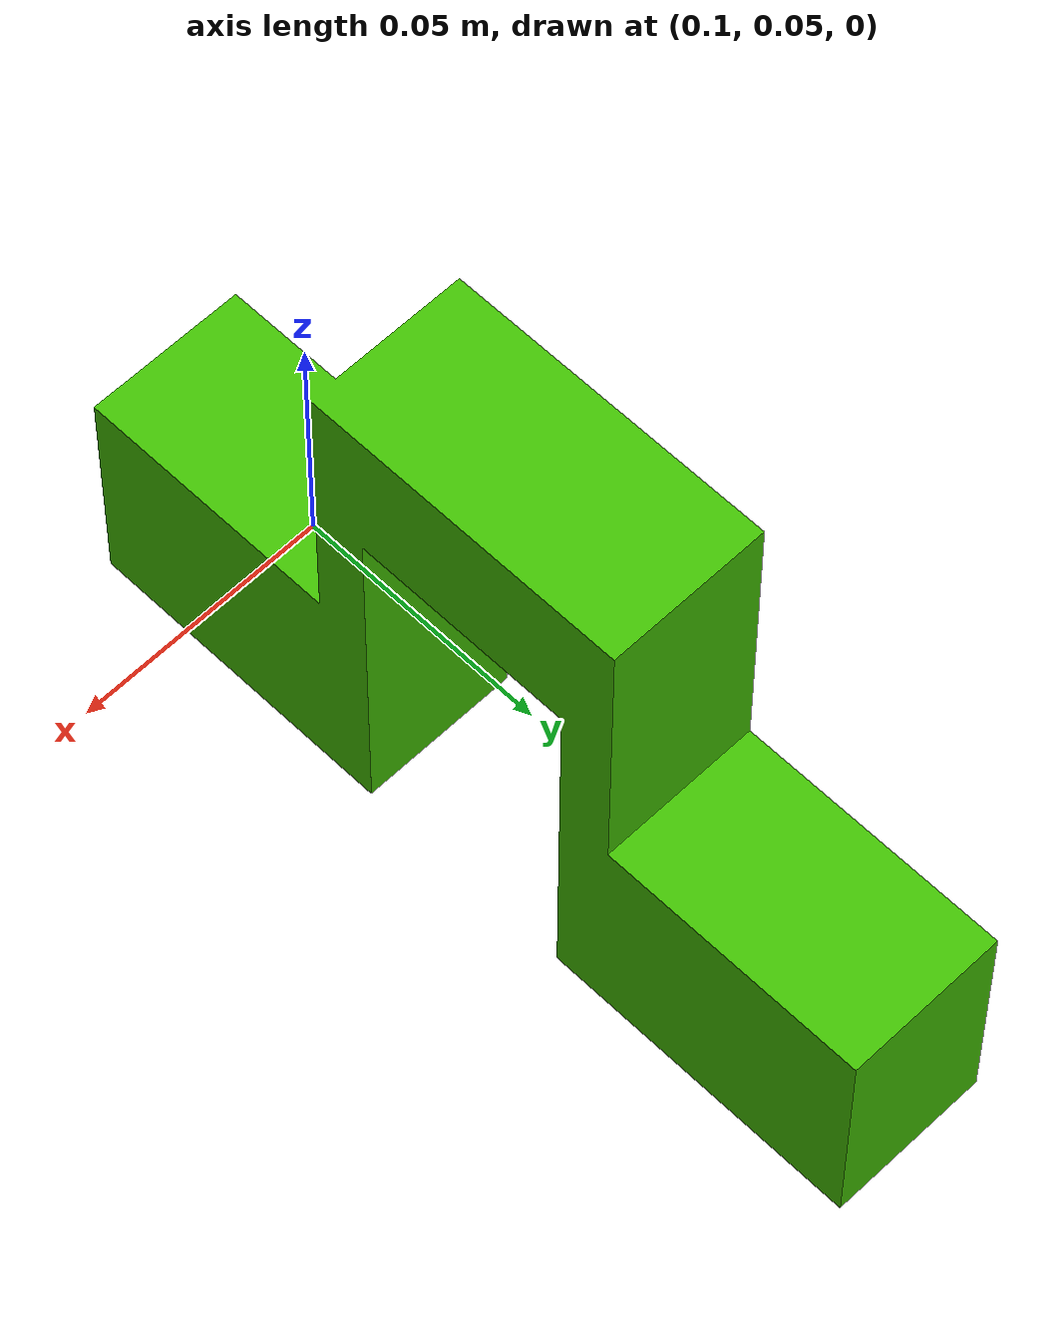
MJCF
<?xml version='1.0' encoding='utf-8'?>
<mujoco model="obj4">
  <asset>
    <mesh name="obj4" file="obj4.obj" scale="0.001 0.001 0.001" />
    <material name="mat4" rgba="0.2549 0.7451 0.00784 1" />
  </asset>
  <worldbody>
    <body>
      <body name="object">
        <geom name="visual" mesh="obj4" type="mesh" group="1" contype="0" conaffinity="0" material="mat4" />
        <geom name="collision" mesh="obj4" type="mesh" group="0" density="50" friction="0.95 0.3 0.1" solimp="0.998 0.998 0.001" solref="0.001 1" condim="4" />
      </body>
      <site name="bottom_site" pos="0 0 -0.025" size="0.005" rgba="0 0 0 0" />
      <site name="top_site" pos="0 0 0.025" size="0.005" rgba="0 0 0 0" />
      <site name="horizontal_radius_site" pos="0.03 0.03 0" size="0.005" rgba="0 0 0 0" />
    </body>
  </worldbody>
</mujoco>
